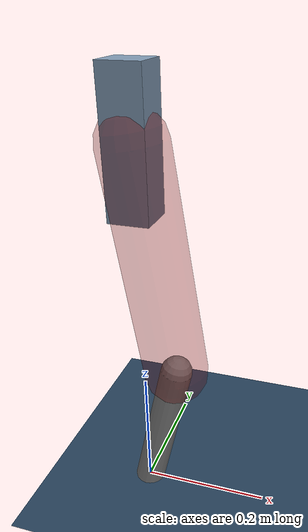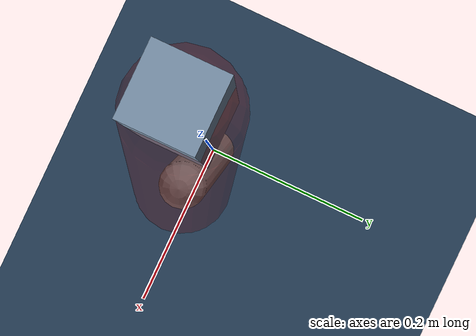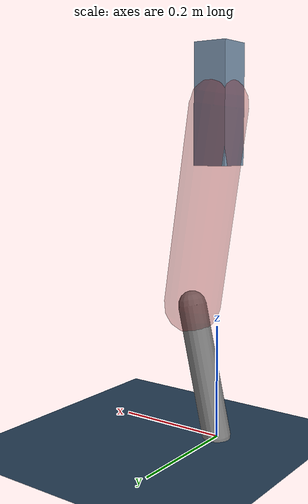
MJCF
<mujoco model="Hopper2D">
	<compiler inertiafromgeom="true" angle="radian" />
	<option timestep="0.001" integrator="implicit" cone="elliptic" solver="Newton" tolerance="1e-10" />

	<default>
		<geom contype="1" conaffinity="1" condim="3" friction="2 0.005 0.0001" solref="0.005 1" />
		<joint limited="true" damping="0.1" />
	</default>

	<asset>
		<texture name="skybox" type="skybox" builtin="gradient" rgb1=".4 .6 .8" rgb2="0 0 0" width="800" height="800" />
		<texture name="grid" type="2d" builtin="checker" rgb1=".1 .2 .3" rgb2=".2 .3 .4" width="300" height="300" mark="edge" markrgb=".2 .3 .4" />
		<material name="ground" texture="grid" texrepeat="1 1" texuniform="true" reflectance="0.1" />
		<material name="leg" rgba="0.5 0.6 0.7 1" />
	</asset>

	<worldbody>

		<geom name="floor" type="plane" size="5 5 0.25" material="ground" />

		<light directional="false" diffuse="0.8 0.8 0.8" specular="0.3 0.3 0.3" pos="0 0 2" dir="0 0 -1" />
		<light mode="targetbodycom" target="base" directional="false" diffuse="0.8 0.8 0.8" specular="0.3 0.3 0.3" pos="0 0 2" dir="0 0 -1" />

		<camera name="fixed" pos="0 -2 1" xyaxes="1 0 0 0 0 1" />
		<camera name="tracking" mode="trackcom" pos="0 -3 1" />

		<body name="root" pos="0 0 0.5757894741760708">
			<joint name="slide_x" type="slide" axis="1 0 0" range="-100 100" />
			<joint name="slide_z" type="slide" axis="0 0 1" range="0 10" />

			<body name="base" pos="0 0 0">
				<geom name="torso" type="box" size="0.03 0.03 0.1" mass="3.2" material="leg" />

				<body name="link1" pos="0 0 0" euler="0 1.4183679198358976 0">
					<joint type="hinge" axis="0 -1 0" pos="0 0 0" name="hinge1" limited="true" range="-3.14 3.14" stiffness="0" damping="0.1" />
					<geom name="thigh" type="capsule" fromto="0 0 0 0.34827602396682755 0 0" size="0.05" rgba="0.5 0 0 0.3" mass="1.1218728671071172" />

					<body name="link2" pos="0.34827602396682755 0 0" euler="0 0.37695790982051736 0">
						<joint type="hinge" axis="0 -1 0" pos="0 0 0" name="hinge2" limited="true" range="-3.14 3.14" stiffness="0" damping="0.1" />
						<geom name="shank" type="capsule" fromto="0 0 0 0.2375134502092433 0 0" size="0.025" mass="0.4322107601673946" />

					</body>
				</body>
			</body>
		</body>
	</worldbody>

	<actuator>
		<motor name="torque1" joint="hinge1" ctrlrange="-172.29928266793746 172.29928266793746" ctrllimited="true" gear="1" />
		<motor name="torque2" joint="hinge2" ctrlrange="-96.44045303665757 96.44045303665757" ctrllimited="true" gear="1" />
	</actuator>
</mujoco>
